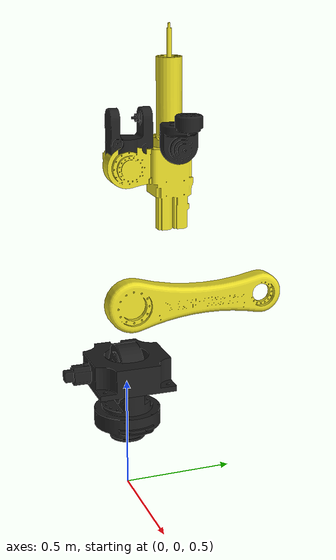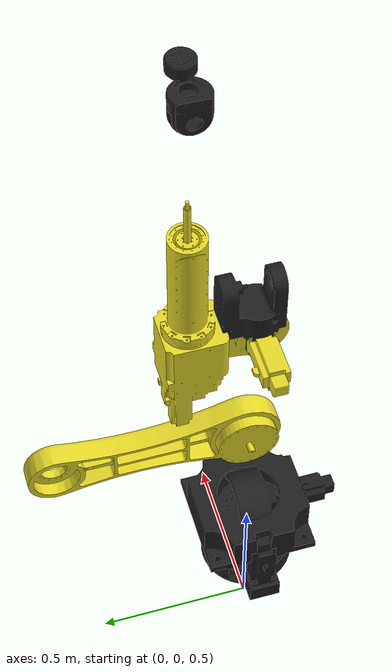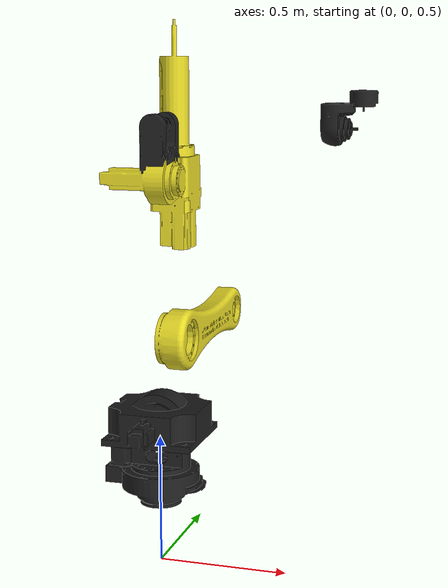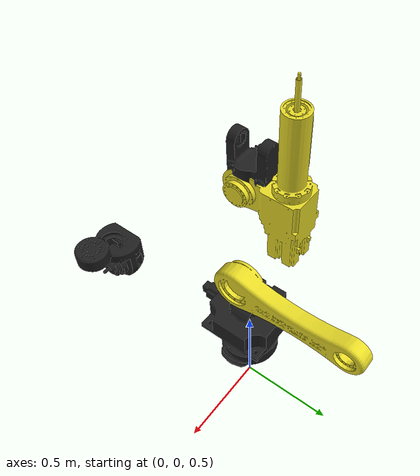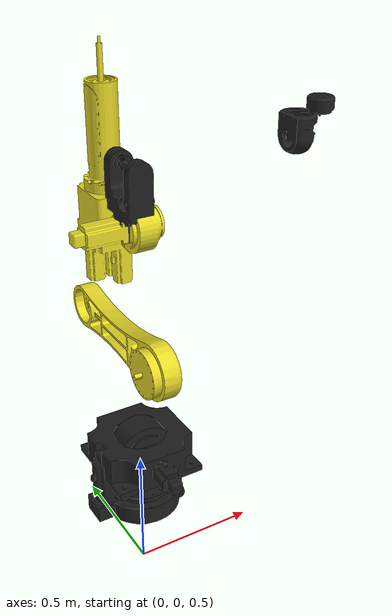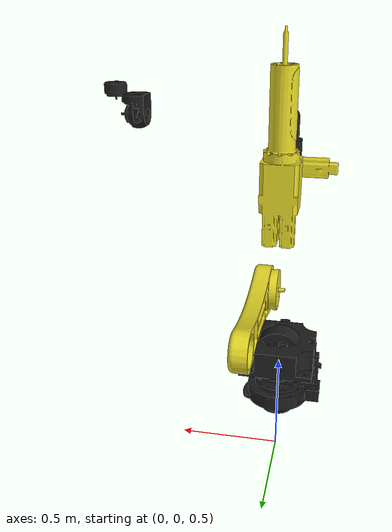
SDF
<?xml version='1.0'?>
<sdf version='1.7'>
  <model name='6RGazeboModelV1'>
    <pose>0 0 1 0 0 0</pose>

    <link name='6RL0'>
      <pose>0 0 0 0 -0 0</pose>
      <inertial>
        <pose>0.003 0 -0.005 0 -0 0</pose>
        <mass>31.781</mass>
        <inertia>
          <ixx>0.376</ixx>
          <ixy>0</ixy>
          <ixz>-0.001</ixz>
          <iyy>0.364</iyy>
          <iyz>0</iyz>
          <izz>0.65</izz>
        </inertia>
      </inertial>
      <self_collide>0</self_collide>
      <enable_wind>0</enable_wind>
      <kinematic>0</kinematic>
      <visual name='6RL0_visual'>
        <pose>0 0 0 0 -0 0</pose>
        <geometry>
          <mesh>
            <scale>1 1 1</scale>
            <uri>/home/nargas/RRRRRR-Control-Project/RoboticLAB_6R/src/gzsimulator/meshes/6RL0.STL</uri>
          </mesh>
        </geometry>
        <material>
          <lighting>1</lighting>
          <script>
            <uri>file://media/materials/scripts/gazebo.material</uri>
            <name>Gazebo/Black</name>
          </script>
          <shader type='pixel'>
            <normal_map>__default__</normal_map>
          </shader>
          <ambient>0 0 0 1</ambient>
          <diffuse>0.7 0.7 0.7 1</diffuse>
          <specular>0.01 0.01 0.01 1</specular>
          <emissive>0 0 0 1</emissive>
        </material>
        <transparency>0</transparency>
        <cast_shadows>1</cast_shadows>
      </visual>
      <collision name='6RL0_collision'>
        <laser_retro>0</laser_retro>
        <max_contacts>10</max_contacts>
        <pose>0 0 0 0 -0 0</pose>
        <geometry>
          <mesh>
            <uri>/home/nargas/RRRRRR-Control-Project/RoboticLAB_6R/src/gzsimulator/meshes/6RL0.STL</uri>
            <scale>1 1 1</scale>
          </mesh>
        </geometry>
        <surface>
          <friction>
            <ode>
              <mu>1</mu>
              <mu2>1</mu2>
              <fdir1>0 0 0</fdir1>
              <slip1>0</slip1>
              <slip2>0</slip2>
            </ode>
            <torsional>
              <coefficient>1</coefficient>
              <patch_radius>0</patch_radius>
              <surface_radius>0</surface_radius>
              <use_patch_radius>1</use_patch_radius>
              <ode>
                <slip>0</slip>
              </ode>
            </torsional>
          </friction>
          <bounce>
            <restitution_coefficient>0</restitution_coefficient>
            <threshold>1e+06</threshold>
          </bounce>
          <contact>
            <collide_without_contact>0</collide_without_contact>
            <collide_without_contact_bitmask>1</collide_without_contact_bitmask>
            <collide_bitmask>1</collide_bitmask>
            <ode>
              <soft_cfm>0</soft_cfm>
              <soft_erp>0.2</soft_erp>
              <kp>1e+13</kp>
              <kd>1</kd>
              <max_vel>0.01</max_vel>
              <min_depth>0</min_depth>
            </ode>
            <bullet>
              <split_impulse>1</split_impulse>
              <split_impulse_penetration_threshold>-0.01</split_impulse_penetration_threshold>
              <soft_cfm>0</soft_cfm>
              <soft_erp>0.2</soft_erp>
              <kp>1e+13</kp>
              <kd>1</kd>
            </bullet>
          </contact>
        </surface>
      </collision>
    </link>
    <link name='6RL1'>
      <pose>-0 -0 0.0635 0 -0 0</pose>
      <inertial>
        <pose>-0.016 -0.02 0.195 0 -0 0</pose>
        <mass>29.923</mass>
        <inertia>
          <ixx>0.557</ixx>
          <ixy>-0.009</ixy>
          <ixz>-0.018</ixz>
          <iyy>0.601</iyy>
          <iyz>-0.076</iyz>
          <izz>0.362</izz>
        </inertia>
      </inertial>
      <self_collide>0</self_collide>
      <enable_wind>0</enable_wind>
      <kinematic>0</kinematic>
      <visual name='6RL1_visual'>
        <pose>0 0 0 0 -0 0</pose>
        <geometry>
          <mesh>
            <scale>1 1 1</scale>
            <uri>/home/nargas/RRRRRR-Control-Project/RoboticLAB_6R/src/gzsimulator/meshes/6RL1.STL</uri>
          </mesh>
        </geometry>
        <material>
          <lighting>1</lighting>
          <script>
            <uri>file://media/materials/scripts/gazebo.material</uri>
            <name>Gazebo/Black</name>
          </script>
          <shader type='pixel'>
            <normal_map>__default__</normal_map>
          </shader>
          <ambient>0 0 0 1</ambient>
          <diffuse>0.7 0.7 0.7 1</diffuse>
          <specular>0.01 0.01 0.01 1</specular>
          <emissive>0 0 0 1</emissive>
        </material>
        <transparency>0</transparency>
        <cast_shadows>1</cast_shadows>
      </visual>
      <collision name='6RL1_collision'>
        <laser_retro>0</laser_retro>
        <max_contacts>10</max_contacts>
        <pose>0 0 0 0 -0 0</pose>
        <geometry>
          <mesh>
            <uri>/home/nargas/RRRRRR-Control-Project/RoboticLAB_6R/src/gzsimulator/meshes/6RL1.STL</uri>
            <scale>1 1 1</scale>
          </mesh>
        </geometry>
        <surface>
          <friction>
            <ode>
              <mu>1</mu>
              <mu2>1</mu2>
              <fdir1>0 0 0</fdir1>
              <slip1>0</slip1>
              <slip2>0</slip2>
            </ode>
            <torsional>
              <coefficient>1</coefficient>
              <patch_radius>0</patch_radius>
              <surface_radius>0</surface_radius>
              <use_patch_radius>1</use_patch_radius>
              <ode>
                <slip>0</slip>
              </ode>
            </torsional>
          </friction>
          <bounce>
            <restitution_coefficient>0</restitution_coefficient>
            <threshold>1e+06</threshold>
          </bounce>
          <contact>
            <collide_without_contact>0</collide_without_contact>
            <collide_without_contact_bitmask>1</collide_without_contact_bitmask>
            <collide_bitmask>1</collide_bitmask>
            <ode>
              <soft_cfm>0</soft_cfm>
              <soft_erp>0.2</soft_erp>
              <kp>1e+13</kp>
              <kd>1</kd>
              <max_vel>0.01</max_vel>
              <min_depth>0</min_depth>
            </ode>
            <bullet>
              <split_impulse>1</split_impulse>
              <split_impulse_penetration_threshold>-0.01</split_impulse_penetration_threshold>
              <soft_cfm>0</soft_cfm>
              <soft_erp>0.2</soft_erp>
              <kp>1e+13</kp>
              <kd>1</kd>
            </bullet>
          </contact>
        </surface>
      </collision>
    </link>
    <link name='6RL2'>
      <pose>0 -0 0.3895 1.5568 -1.57079 -3.12758</pose>
      <inertial>
        <pose>0.183 0 0.082 0 -0 0</pose>
        <mass>16.89</mass>
        <inertia>
          <ixx>0.067</ixx>
          <ixy>0</ixy>
          <ixz>0.044</ixz>
          <iyy>1</iyy>
          <iyz>0</iyz>
          <izz>1.034</izz>
        </inertia>
      </inertial>
      <self_collide>0</self_collide>
      <enable_wind>0</enable_wind>
      <kinematic>0</kinematic>
      <visual name='6RL2_visual'>
        <pose>0 0 0 0 -0 0</pose>
        <geometry>
          <mesh>
            <scale>1 1 1</scale>
            <uri>/home/nargas/RRRRRR-Control-Project/RoboticLAB_6R/src/gzsimulator/meshes/6RL2.STL</uri>
          </mesh>
        </geometry>
        <material>
          <lighting>1</lighting>
          <script>
            <uri>file://media/materials/scripts/gazebo.material</uri>
            <name>Gazebo/Yellow</name>
          </script>
          <shader type='pixel'>
            <normal_map>__default__</normal_map>
          </shader>
          <ambient>255 165 20 1</ambient>
          <diffuse>0.7 0.7 0.7 1</diffuse>
          <specular>0.01 0.01 0.01 1</specular>
          <emissive>0 0 0 1</emissive>
        </material>
        <transparency>0</transparency>
        <cast_shadows>1</cast_shadows>
      </visual>
      <collision name='6RL2_collision'>
        <laser_retro>0</laser_retro>
        <max_contacts>10</max_contacts>
        <pose>0 0 0 0 -0 0</pose>
        <geometry>
          <mesh>
            <uri>/home/nargas/RRRRRR-Control-Project/RoboticLAB_6R/src/gzsimulator/meshes/6RL2.STL</uri>
            <scale>1 1 1</scale>
          </mesh>
        </geometry>
        <surface>
          <friction>
            <ode>
              <mu>1</mu>
              <mu2>1</mu2>
              <fdir1>0 0 0</fdir1>
              <slip1>0</slip1>
              <slip2>0</slip2>
            </ode>
            <torsional>
              <coefficient>1</coefficient>
              <patch_radius>0</patch_radius>
              <surface_radius>0</surface_radius>
              <use_patch_radius>1</use_patch_radius>
              <ode>
                <slip>0</slip>
              </ode>
            </torsional>
          </friction>
          <bounce>
            <restitution_coefficient>0</restitution_coefficient>
            <threshold>1e+06</threshold>
          </bounce>
          <contact>
            <collide_without_contact>0</collide_without_contact>
            <collide_without_contact_bitmask>1</collide_without_contact_bitmask>
            <collide_bitmask>1</collide_bitmask>
            <ode>
              <soft_cfm>0</soft_cfm>
              <soft_erp>0.2</soft_erp>
              <kp>1e+13</kp>
              <kd>1</kd>
              <max_vel>0.01</max_vel>
              <min_depth>0</min_depth>
            </ode>
            <bullet>
              <split_impulse>1</split_impulse>
              <split_impulse_penetration_threshold>-0.01</split_impulse_penetration_threshold>
              <soft_cfm>0</soft_cfm>
              <soft_erp>0.2</soft_erp>
              <kp>1e+13</kp>
              <kd>1</kd>
            </bullet>
          </contact>
        </surface>
      </collision>
    </link>
    <link name='6RL3'>
      <pose>-4e-06 -0 0.9895 1.5568 -1.57079 -3.12758</pose>
      <inertial>
        <pose>0.128 0.002 -0.003 0 -0 0</pose>
        <mass>24.16</mass>
        <inertia>
          <ixx>0.618</ixx>
          <ixy>-0.007</ixy>
          <ixz>0.019</ixz>
          <iyy>0.331</iyy>
          <iyz>-0.005</iyz>
          <izz>0.791</izz>
        </inertia>
      </inertial>
      <self_collide>0</self_collide>
      <enable_wind>0</enable_wind>
      <kinematic>0</kinematic>
      <visual name='6RL3_visual'>
        <pose>0 0 0 0 -0 0</pose>
        <geometry>
          <mesh>
            <scale>1 1 1</scale>
            <uri>/home/nargas/RRRRRR-Control-Project/RoboticLAB_6R/src/gzsimulator/meshes/6RL3.STL</uri>
          </mesh>
        </geometry>
        <material>
          <lighting>1</lighting>
          <script>
            <uri>file://media/materials/scripts/gazebo.material</uri>
            <name>Gazebo/Yellow</name>
          </script>
          <shader type='pixel'>
            <normal_map>__default__</normal_map>
          </shader>
          <ambient>255 165 20 1</ambient>
          <diffuse>0.7 0.7 0.7 1</diffuse>
          <specular>0.01 0.01 0.01 1</specular>
          <emissive>0 0 0 1</emissive>
        </material>
        <transparency>0</transparency>
        <cast_shadows>1</cast_shadows>
      </visual>
      <collision name='6RL3_collision'>
        <laser_retro>0</laser_retro>
        <max_contacts>10</max_contacts>
        <pose>0 0 0 0 -0 0</pose>
        <geometry>
          <mesh>
            <uri>/home/nargas/RRRRRR-Control-Project/RoboticLAB_6R/src/gzsimulator/meshes/6RL3.STL</uri>
            <scale>1 1 1</scale>
          </mesh>
        </geometry>
        <surface>
          <friction>
            <ode>
              <mu>1</mu>
              <mu2>1</mu2>
              <fdir1>0 0 0</fdir1>
              <slip1>0</slip1>
              <slip2>0</slip2>
            </ode>
            <torsional>
              <coefficient>1</coefficient>
              <patch_radius>0</patch_radius>
              <surface_radius>0</surface_radius>
              <use_patch_radius>1</use_patch_radius>
              <ode>
                <slip>0</slip>
              </ode>
            </torsional>
          </friction>
          <bounce>
            <restitution_coefficient>0</restitution_coefficient>
            <threshold>1e+06</threshold>
          </bounce>
          <contact>
            <collide_without_contact>0</collide_without_contact>
            <collide_without_contact_bitmask>1</collide_without_contact_bitmask>
            <collide_bitmask>1</collide_bitmask>
            <ode>
              <soft_cfm>0</soft_cfm>
              <soft_erp>0.2</soft_erp>
              <kp>1e+13</kp>
              <kd>1</kd>
              <max_vel>0.01</max_vel>
              <min_depth>0</min_depth>
            </ode>
            <bullet>
              <split_impulse>1</split_impulse>
              <split_impulse_penetration_threshold>-0.01</split_impulse_penetration_threshold>
              <soft_cfm>0</soft_cfm>
              <soft_erp>0.2</soft_erp>
              <kp>1e+13</kp>
              <kd>1</kd>
            </bullet>
          </contact>
        </surface>
      </collision>
    </link>
    <link name='6RL4'>
      <pose>-5e-06 -0 1.1895 1e-05 -1.57079 -3.14159</pose>
      <inertial>
        <pose>0 0.015 0.562 0 -0 0</pose>
        <mass>4.742</mass>
        <inertia>
          <ixx>0.04</ixx>
          <ixy>0</ixy>
          <ixz>0</ixz>
          <iyy>0.032</iyy>
          <iyz>0.004</iyz>
          <izz>0.018</izz>
        </inertia>
      </inertial>
      <self_collide>0</self_collide>
      <enable_wind>0</enable_wind>
      <kinematic>0</kinematic>
      <visual name='6RL4_visual'>
        <pose>0 0 0 0 -0 0</pose>
        <geometry>
          <mesh>
            <scale>1 1 1</scale>
            <uri>/home/nargas/RRRRRR-Control-Project/RoboticLAB_6R/src/gzsimulator/meshes/6RL4.STL</uri>
          </mesh>
        </geometry>
        <material>
          <lighting>1</lighting>
          <script>
            <uri>file://media/materials/scripts/gazebo.material</uri>
            <name>Gazebo/Black</name>
          </script>
          <shader type='pixel'>
            <normal_map>__default__</normal_map>
          </shader>
          <ambient>0 0 0 1</ambient>
          <diffuse>0.7 0.7 0.7 1</diffuse>
          <specular>0.01 0.01 0.01 1</specular>
          <emissive>0 0 0 1</emissive>
        </material>
        <transparency>0</transparency>
        <cast_shadows>1</cast_shadows>
      </visual>
      <collision name='6RL4_collision'>
        <laser_retro>0</laser_retro>
        <max_contacts>10</max_contacts>
        <pose>0 0 0 0 -0 0</pose>
        <geometry>
          <mesh>
            <uri>/home/nargas/RRRRRR-Control-Project/RoboticLAB_6R/src/gzsimulator/meshes/6RL4.STL</uri>
            <scale>1 1 1</scale>
          </mesh>
        </geometry>
        <surface>
          <friction>
            <ode>
              <mu>1</mu>
              <mu2>1</mu2>
              <fdir1>0 0 0</fdir1>
              <slip1>0</slip1>
              <slip2>0</slip2>
            </ode>
            <torsional>
              <coefficient>1</coefficient>
              <patch_radius>0</patch_radius>
              <surface_radius>0</surface_radius>
              <use_patch_radius>1</use_patch_radius>
              <ode>
                <slip>0</slip>
              </ode>
            </torsional>
          </friction>
          <bounce>
            <restitution_coefficient>0</restitution_coefficient>
            <threshold>1e+06</threshold>
          </bounce>
          <contact>
            <collide_without_contact>0</collide_without_contact>
            <collide_without_contact_bitmask>1</collide_without_contact_bitmask>
            <collide_bitmask>1</collide_bitmask>
            <ode>
              <soft_cfm>0</soft_cfm>
              <soft_erp>0.2</soft_erp>
              <kp>1e+13</kp>
              <kd>1</kd>
              <max_vel>0.01</max_vel>
              <min_depth>0</min_depth>
            </ode>
            <bullet>
              <split_impulse>1</split_impulse>
              <split_impulse_penetration_threshold>-0.01</split_impulse_penetration_threshold>
              <soft_cfm>0</soft_cfm>
              <soft_erp>0.2</soft_erp>
              <kp>1e+13</kp>
              <kd>1</kd>
            </bullet>
          </contact>
        </surface>
      </collision>
    </link>
    <link name='6RL5'>
      <pose>0.685495 9e-06 1.1895 1.5568 -1.57079 -3.12758</pose>
      <inertial>
        <pose>-0.003 0.02 -0.013 0 -0 0</pose>
        <mass>2.615</mass>
        <inertia>
          <ixx>0.007</ixx>
          <ixy>0</ixy>
          <ixz>0</ixz>
          <iyy>0.006</iyy>
          <iyz>0</iyz>
          <izz>0.008</izz>
        </inertia>
      </inertial>
      <self_collide>0</self_collide>
      <enable_wind>0</enable_wind>
      <kinematic>0</kinematic>
      <visual name='6RL5_visual'>
        <pose>0 0 0 0 -0 0</pose>
        <geometry>
          <mesh>
            <scale>1 1 1</scale>
            <uri>/home/nargas/RRRRRR-Control-Project/RoboticLAB_6R/src/gzsimulator/meshes/6RL5.STL</uri>
          </mesh>
        </geometry>
        <material>
          <lighting>1</lighting>
          <script>
            <uri>file://media/materials/scripts/gazebo.material</uri>
            <name>Gazebo/Black</name>
          </script>
          <shader type='pixel'>
            <normal_map>__default__</normal_map>
          </shader>
          <ambient>0 0 0 1</ambient>
          <diffuse>0.7 0.7 0.7 1</diffuse>
          <specular>0.01 0.01 0.01 1</specular>
          <emissive>0 0 0 1</emissive>
        </material>
        <transparency>0</transparency>
        <cast_shadows>1</cast_shadows>
      </visual>
      <collision name='6RL5_collision'>
        <laser_retro>0</laser_retro>
        <max_contacts>10</max_contacts>
        <pose>0 0 0 0 -0 0</pose>
        <geometry>
          <mesh>
            <uri>/home/nargas/RRRRRR-Control-Project/RoboticLAB_6R/src/gzsimulator/meshes/6RL5.STL</uri>
            <scale>1 1 1</scale>
          </mesh>
        </geometry>
        <surface>
          <friction>
            <ode>
              <mu>1</mu>
              <mu2>1</mu2>
              <fdir1>0 0 0</fdir1>
              <slip1>0</slip1>
              <slip2>0</slip2>
            </ode>
            <torsional>
              <coefficient>1</coefficient>
              <patch_radius>0</patch_radius>
              <surface_radius>0</surface_radius>
              <use_patch_radius>1</use_patch_radius>
              <ode>
                <slip>0</slip>
              </ode>
            </torsional>
          </friction>
          <bounce>
            <restitution_coefficient>0</restitution_coefficient>
            <threshold>1e+06</threshold>
          </bounce>
          <contact>
            <collide_without_contact>0</collide_without_contact>
            <collide_without_contact_bitmask>1</collide_without_contact_bitmask>
            <collide_bitmask>1</collide_bitmask>
            <ode>
              <soft_cfm>0</soft_cfm>
              <soft_erp>0.2</soft_erp>
              <kp>1e+13</kp>
              <kd>1</kd>
              <max_vel>0.01</max_vel>
              <min_depth>0</min_depth>
            </ode>
            <bullet>
              <split_impulse>1</split_impulse>
              <split_impulse_penetration_threshold>-0.01</split_impulse_penetration_threshold>
              <soft_cfm>0</soft_cfm>
              <soft_erp>0.2</soft_erp>
              <kp>1e+13</kp>
              <kd>1</kd>
            </bullet>
          </contact>
        </surface>
      </collision>
    </link>
    <link name='6RL6'>
      <pose>0.764495 1e-05 1.18951 1e-05 -1.57079 -3.14159</pose>
      <inertial>
        <pose>0 0 0.029 0 -0 0</pose>
        <mass>0.955</mass>
        <inertia>
          <ixx>0.001</ixx>
          <ixy>0</ixy>
          <ixz>0</ixz>
          <iyy>0.001</iyy>
          <iyz>0</iyz>
          <izz>0.001</izz>
        </inertia>
      </inertial>
      <self_collide>0</self_collide>
      <enable_wind>0</enable_wind>
      <kinematic>0</kinematic>
      <visual name='6RL6_visual'>
        <pose>0 0 0 0 -0 0</pose>
        <geometry>
          <mesh>
            <scale>1 1 1</scale>
            <uri>/home/nargas/RRRRRR-Control-Project/RoboticLAB_6R/src/gzsimulator/meshes/6RL6.STL</uri>
          </mesh>
        </geometry>
        <material>
          <lighting>1</lighting>
          <script>
            <uri>file://media/materials/scripts/gazebo.material</uri>
            <name>Gazebo/Black</name>
          </script>
          <shader type='pixel'>
            <normal_map>__default__</normal_map>
          </shader>
          <ambient>0 0 0 1</ambient>
          <diffuse>0.7 0.7 0.7 1</diffuse>
          <specular>0.01 0.01 0.01 1</specular>
          <emissive>0 0 0 1</emissive>
        </material>
        <transparency>0</transparency>
        <cast_shadows>1</cast_shadows>
      </visual>
      <collision name='6RL6_collision'>
        <laser_retro>0</laser_retro>
        <max_contacts>10</max_contacts>
        <pose>0 0 0 0 -0 0</pose>
        <geometry>
          <mesh>
            <uri>/home/nargas/RRRRRR-Control-Project/RoboticLAB_6R/src/gzsimulator/meshes/6RL6.STL</uri>
            <scale>1 1 1</scale>
          </mesh>
        </geometry>
        <surface>
          <friction>
            <ode>
              <mu>1</mu>
              <mu2>1</mu2>
              <fdir1>0 0 0</fdir1>
              <slip1>0</slip1>
              <slip2>0</slip2>
            </ode>
            <torsional>
              <coefficient>1</coefficient>
              <patch_radius>0</patch_radius>
              <surface_radius>0</surface_radius>
              <use_patch_radius>1</use_patch_radius>
              <ode>
                <slip>0</slip>
              </ode>
            </torsional>
          </friction>
          <bounce>
            <restitution_coefficient>0</restitution_coefficient>
            <threshold>1e+06</threshold>
          </bounce>
          <contact>
            <collide_without_contact>0</collide_without_contact>
            <collide_without_contact_bitmask>1</collide_without_contact_bitmask>
            <collide_bitmask>1</collide_bitmask>
            <ode>
              <soft_cfm>0</soft_cfm>
              <soft_erp>0.2</soft_erp>
              <kp>1e+13</kp>
              <kd>1</kd>
              <max_vel>0.01</max_vel>
              <min_depth>0</min_depth>
            </ode>
            <bullet>
              <split_impulse>1</split_impulse>
              <split_impulse_penetration_threshold>-0.01</split_impulse_penetration_threshold>
              <soft_cfm>0</soft_cfm>
              <soft_erp>0.2</soft_erp>
              <kp>1e+13</kp>
              <kd>1</kd>
            </bullet>
          </contact>
        </surface>
      </collision>
    </link>

    <!--_________________fixing base_link to world_________________-->
    <joint name ="worldJ0" type="fixed">

        <parent>world</parent>
        <child>6RL0</child>
        <pose>0 0 1 0 0 0</pose>
    </joint>
    <!--_________________fixing base_link to world_________________-->

    <joint name='6RJ1' type='revolute'>
      <parent>6RL0</parent>
      <child>6RL1</child>
      <pose>0 0 0 0 -0 0</pose>
      <axis>
        <xyz>0 0 1</xyz>
        <limit>
          <lower>-1.79769e+308</lower>
          <upper>1.79769e+308</upper>
          <effort>-1</effort>
          <velocity>-1</velocity>
        </limit>
        <dynamics>
          <spring_reference>0</spring_reference>
          <spring_stiffness>0</spring_stiffness>
          <damping>0</damping>
          <friction>0</friction>
        </dynamics>
      </axis>
      <physics>
        <ode>
          <limit>
            <cfm>0</cfm>
            <erp>0.2</erp>
          </limit>
          <suspension>
            <cfm>0</cfm>
            <erp>0.2</erp>
          </suspension>
        </ode>
      </physics>
    </joint>
    <joint name='6RJ2' type='revolute'>
      <parent>6RL1</parent>
      <child>6RL2</child>
      <pose>0 0 0 0 -0 0</pose>
      <axis>
        <xyz>0 0 1</xyz>
        <limit>
          <lower>-1.79769e+308</lower>
          <upper>1.79769e+308</upper>
          <effort>-1</effort>
          <velocity>-1</velocity>
        </limit>
        <dynamics>
          <spring_reference>0</spring_reference>
          <spring_stiffness>0</spring_stiffness>
          <damping>0</damping>
          <friction>0</friction>
        </dynamics>
      </axis>
      <physics>
        <ode>
          <limit>
            <cfm>0</cfm>
            <erp>0.2</erp>
          </limit>
          <suspension>
            <cfm>0</cfm>
            <erp>0.2</erp>
          </suspension>
        </ode>
      </physics>
    </joint>
    <joint name='6RJ3' type='revolute'>
      <parent>6RL2</parent>
      <child>6RL3</child>
      <pose>0 0 0 0 -0 0</pose>
      <axis>
        <xyz>0 0 1</xyz>
        <limit>
          <lower>-1.79769e+308</lower>
          <upper>1.79769e+308</upper>
          <effort>-1</effort>
          <velocity>-1</velocity>
        </limit>
        <dynamics>
          <spring_reference>0</spring_reference>
          <spring_stiffness>0</spring_stiffness>
          <damping>0</damping>
          <friction>0</friction>
        </dynamics>
      </axis>
      <physics>
        <ode>
          <limit>
            <cfm>0</cfm>
            <erp>0.2</erp>
          </limit>
          <suspension>
            <cfm>0</cfm>
            <erp>0.2</erp>
          </suspension>
        </ode>
      </physics>
    </joint>
    <joint name='6RJ4' type='revolute'>
      <parent>6RL3</parent>
      <child>6RL4</child>
      <pose>0 0 0 0 -0 0</pose>
      <axis>
        <xyz>0 0 1</xyz>
        <limit>
          <lower>-1.79769e+308</lower>
          <upper>1.79769e+308</upper>
          <effort>-1</effort>
          <velocity>-1</velocity>
        </limit>
        <dynamics>
          <spring_reference>0</spring_reference>
          <spring_stiffness>0</spring_stiffness>
          <damping>0</damping>
          <friction>0</friction>
        </dynamics>
      </axis>
      <physics>
        <ode>
          <limit>
            <cfm>0</cfm>
            <erp>0.2</erp>
          </limit>
          <suspension>
            <cfm>0</cfm>
            <erp>0.2</erp>
          </suspension>
        </ode>
      </physics>
    </joint>
    <joint name='6RJ5' type='revolute'>
      <parent>6RL4</parent>
      <child>6RL5</child>
      <pose>0 0 0 0 -0 0</pose>
      <axis>
        <xyz>0 0 1</xyz>
        <limit>
          <lower>-1.79769e+308</lower>
          <upper>1.79769e+308</upper>
          <effort>-1</effort>
          <velocity>-1</velocity>
        </limit>
        <dynamics>
          <spring_reference>0</spring_reference>
          <spring_stiffness>0</spring_stiffness>
          <damping>0</damping>
          <friction>0</friction>
        </dynamics>
      </axis>
      <physics>
        <ode>
          <limit>
            <cfm>0</cfm>
            <erp>0.2</erp>
          </limit>
          <suspension>
            <cfm>0</cfm>
            <erp>0.2</erp>
          </suspension>
        </ode>
      </physics>
    </joint>
    <joint name='6RJ6' type='revolute'>
      <parent>6RL5</parent>
      <child>6RL6</child>
      <pose>0 0 0 0 -0 0</pose>
      <axis>
        <xyz>0 0 1</xyz>
        <limit>
          <lower>-1.79769e+308</lower>
          <upper>1.79769e+308</upper>
          <effort>-1</effort>
          <velocity>-1</velocity>
        </limit>
        <dynamics>
          <spring_reference>0</spring_reference>
          <spring_stiffness>0</spring_stiffness>
          <damping>0</damping>
          <friction>0</friction>
        </dynamics>
      </axis>
      <physics>
        <ode>
          <limit>
            <cfm>0</cfm>
            <erp>0.2</erp>
          </limit>
          <suspension>
            <cfm>0</cfm>
            <erp>0.2</erp>
          </suspension>
        </ode>
      </physics>
    </joint>
    <static>0</static>
    <allow_auto_disable>1</allow_auto_disable>
    <!-- _________________Joint State Publisher plugins_________________ -->

    <!-- _________________gazebo ROS 6R plugin_________________ -->
    <plugin name='gazebo_ROS_6R_plugin'
    filename='/home/nargas/RRRRRR-Control-Project/plugin/SO_Files/libgazebo_ros_6r.so'>
    </plugin>
    <!-- _________________gazebo ROS 6R plugin_________________ -->

  </model>
</sdf>
